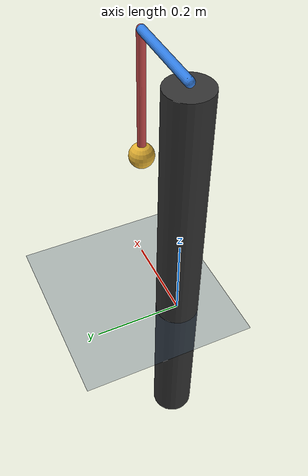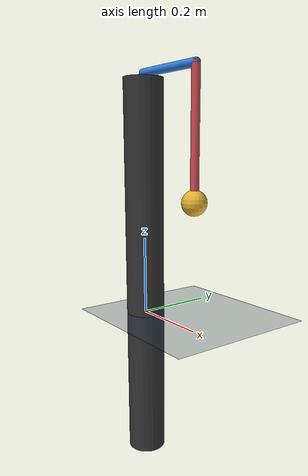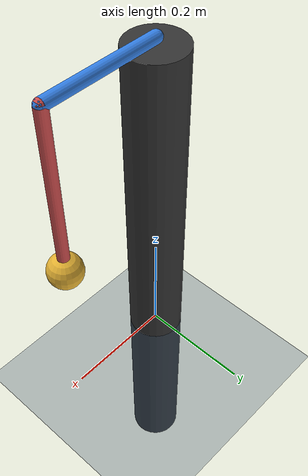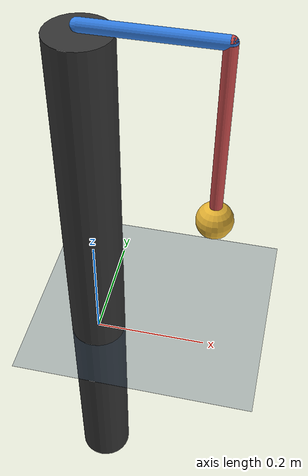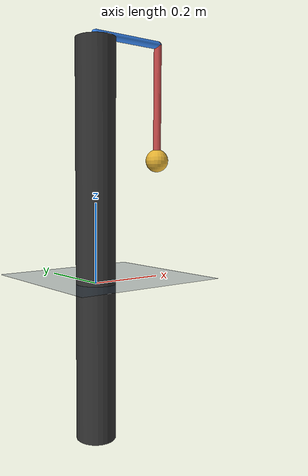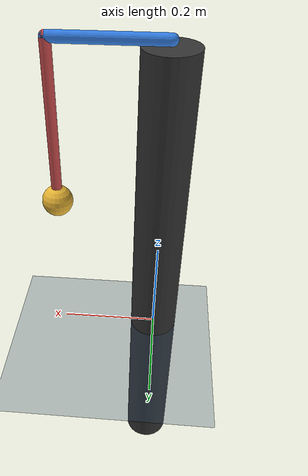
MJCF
<mujoco model="actuator_demo">

    <compiler angle="radian" autolimits="true"/>

    <option
        timestep="0.002"
        gravity="0 0 -9.81"
        integrator="implicitfast"/>

    <visual>
        <global realtime="1"/>
        <quality shadowsize="2048"/>
        <headlight
            ambient="0.3 0.3 0.3"
            diffuse="0.7 0.7 0.7"
            specular="0.2 0.2 0.2"/>
    </visual>

    <asset>
        <texture
            name="floor_texture"
            type="2d"
            builtin="checker"
            rgb1="0.2 0.3 0.4"
            rgb2="0.1 0.2 0.3"
            width="512"
            height="512"/>

        <material
            name="floor_material"
            texture="floor_texture"
            texrepeat="5 5"
            reflectance="0.1"/>
    </asset>

    <worldbody>

        <!-- Floor -->

        <geom
            name="floor"
            type="plane"
            pos="0 0 0"
            size="5 5 0.1"
            material="floor_material"/>

        <!-- Main light -->

        <light
            directional="true"
            pos="0 0 5"
            dir="0 0 -1"
            diffuse="0.8 0.8 0.8"
            specular="0.2 0.2 0.2"/>

        <!-- Fixed support                                        -->

        <body name="support" pos="0 0 0.1">

            <geom
                name="support_geom"
                type="cylinder"
                size="0.05 0.5"
                mass="100"
                rgba="0.2 0.2 0.2 1"/>

            <!-- Rotating horizontal arm                          -->

            <body name="rotary_arm" pos="0 0 0.51">

                <joint
                    name="pivot"
                    type="hinge"
                    pos="0 0 0"
                    axis="0 0 1"
                    damping="0.001"
                    frictionloss="0"/>

                <geom
                    name="horizontal_arm"
                    type="capsule"
                    fromto="0 0 0 0.2 0 0"
                    size="0.01"
                    mass="0.01"
                    rgba="0.2 0.5 0.9 1"/>

                <!-- Pendulum at end of horizontal arm             -->

                <body name="pendulum" pos="0.2 0 0">

                    <joint
                        name="ph"
                        type="hinge"
                        pos="0 0 0"
                        axis="1 0 0"
                        damping="0.001"
                        frictionloss="0"/>

                    <geom
                        name="pendulum_rod"
                        type="capsule"
                        fromto="0 0 0 0 0 -0.3"
                        size="0.01"
                        mass="0.005"
                        rgba="0.8 0.3 0.3 1"/>

                    <geom
                        name="pendulum_mass"
                        type="sphere"
                        pos="0 0 -0.3"
                        size="0.03"
                        mass="0.01"
                        rgba="0.9 0.7 0.2 1"/>

                </body>

            </body>

        </body>

    </worldbody>

    <!-- Actuators                                                 -->

    <actuator>

        <!-- Position control for the horizontal arm -->

        <position
            name="pivot_position"
            joint="pivot"
            kp="2"
            kv="0.1"
            ctrllimited="true"
            ctrlrange="-3.14 3.14"
            forcelimited="true"
            forcerange="-5 5"/>

        <!-- Integrated velocity control for the pendulum -->

        <intvelocity
            name="ph_intvelocity"
            joint="ph"
            kp="100"
            kv="2"
            actlimited="true"
            actrange="-2 2"/>

    </actuator>

</mujoco>
